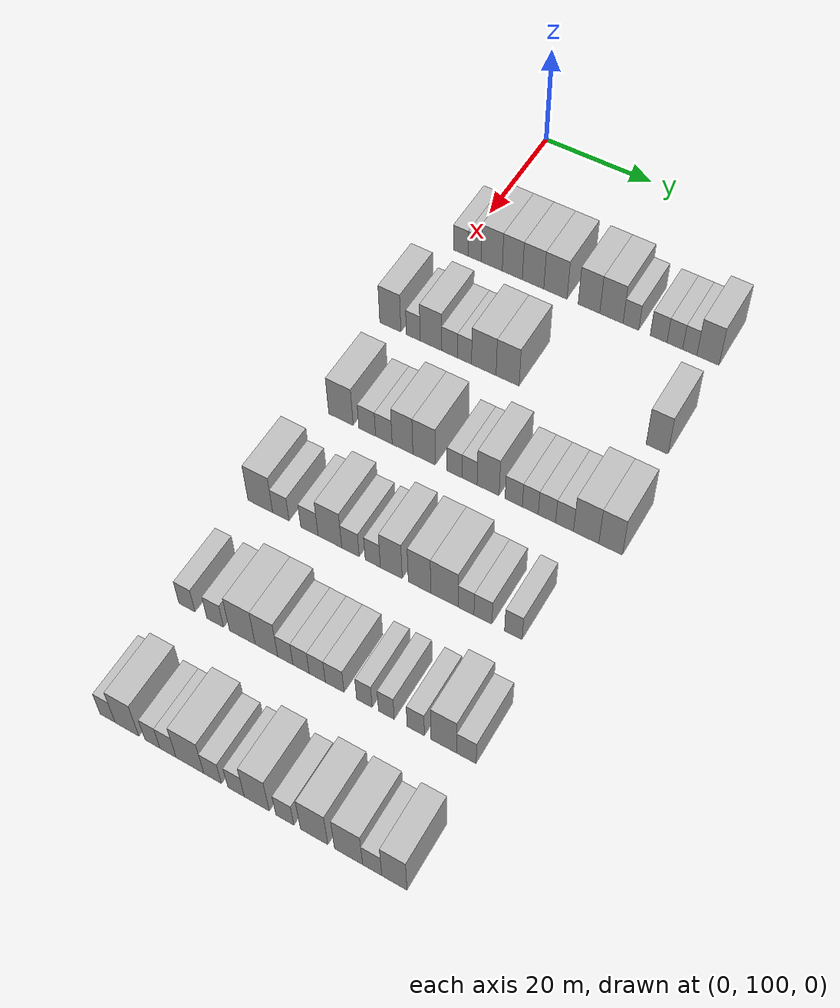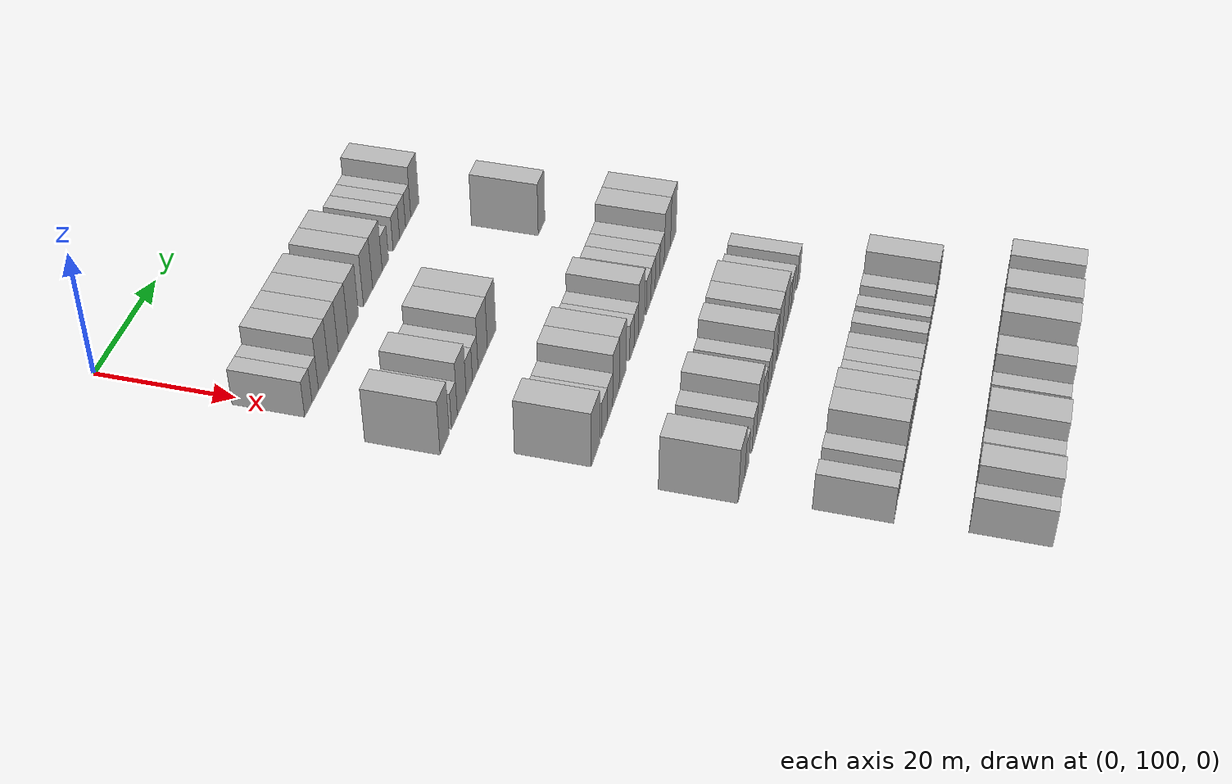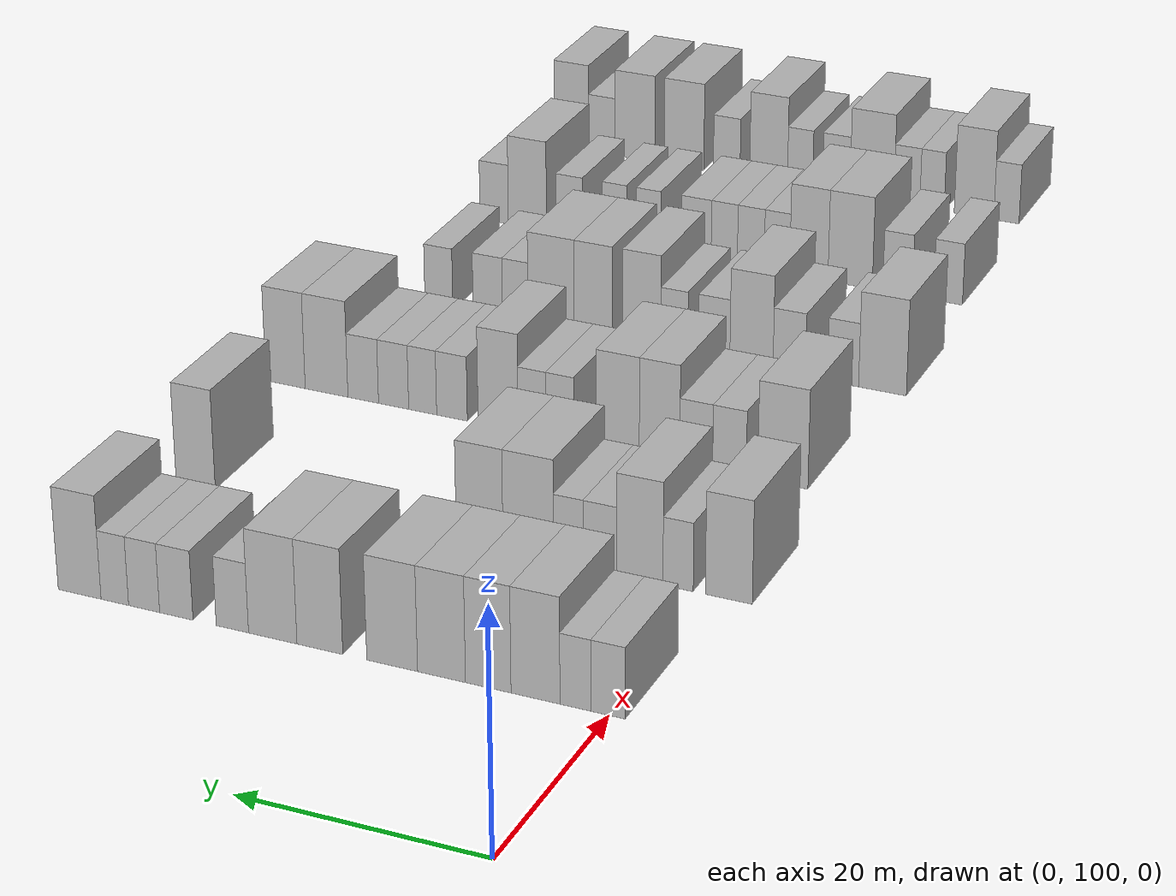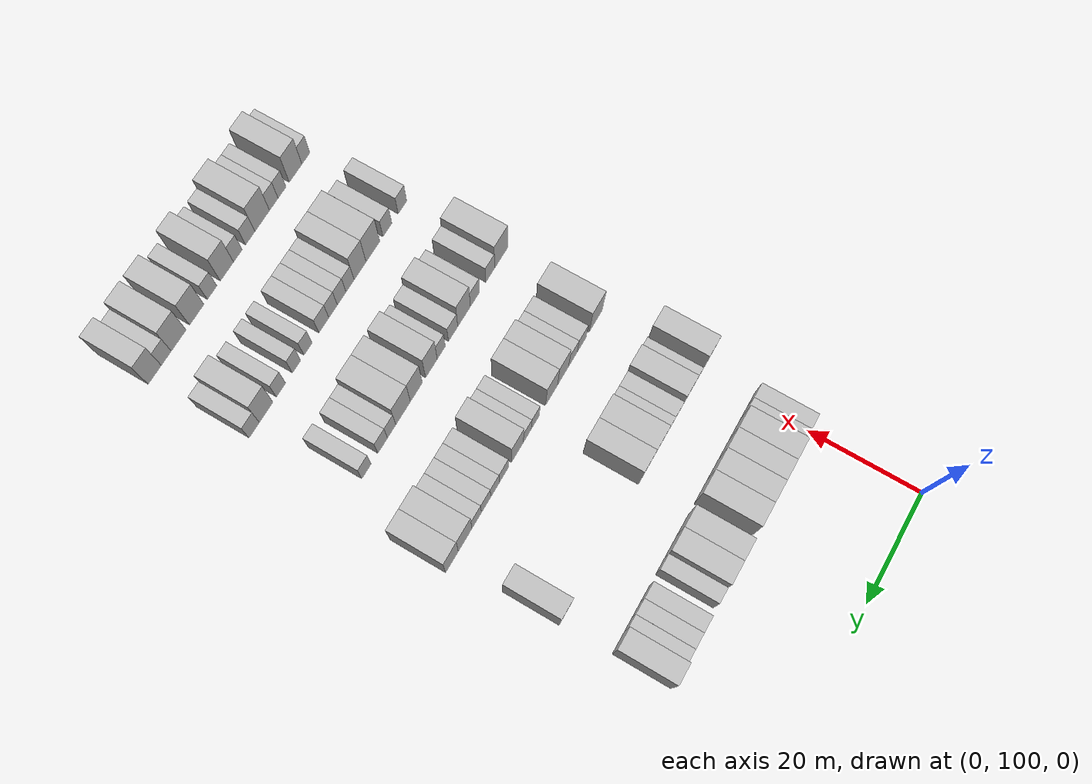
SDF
<sdf version="1.6">
 <world name="default">
  <model name="building_105">
   <static>1</static>
   <pose>25.0000 100.1032 0 0.000000 0.000000 0.000000</pose>
   <link name="link">
    <pose>0 0 3.00 0 0 0</pose>
    <collision name="collision"><geometry><box><size>10.0000 2.7292 6.0000</size></box></geometry></collision>
    <visual name="visual">
     <cast_shadows>0</cast_shadows>
     <geometry><box><size>10.0000 2.7292 6.0000</size></box></geometry>
     <material>
      <script>
       <uri>model://HANNAS_wall/materials/scripts</uri>
       <uri>model://HANNAS_wall/materials/textures</uri>
       <name>vrc/HANNAS_wall</name>
      </script>
     </material>
    </visual>
   </link>
  </model>
  <model name="building_106">
   <static>1</static>
   <pose>25.0000 102.6939 0 0.000000 0.000000 0.000000</pose>
   <link name="link">
    <pose>0 0 3.00 0 0 0</pose>
    <collision name="collision"><geometry><box><size>10.0000 2.4521 6.0000</size></box></geometry></collision>
    <visual name="visual">
     <cast_shadows>0</cast_shadows>
     <geometry><box><size>10.0000 2.4521 6.0000</size></box></geometry>
     <material>
      <script>
       <uri>model://HANNAS_wall/materials/scripts</uri>
       <uri>model://HANNAS_wall/materials/textures</uri>
       <name>vrc/HANNAS_wall</name>
      </script>
     </material>
    </visual>
   </link>
  </model>
  <model name="building_107">
   <static>1</static>
   <pose>25.0000 105.8822 0 0.000000 0.000000 0.000000</pose>
   <link name="link">
    <pose>0 0 4.50 0 0 0</pose>
    <collision name="collision"><geometry><box><size>10.0000 3.9244 9.0000</size></box></geometry></collision>
    <visual name="visual">
     <cast_shadows>0</cast_shadows>
     <geometry><box><size>10.0000 3.9244 9.0000</size></box></geometry>
     <material>
      <script>
       <uri>model://HANNAS_wall/materials/scripts</uri>
       <uri>model://HANNAS_wall/materials/textures</uri>
       <name>vrc/HANNAS_wall</name>
      </script>
     </material>
    </visual>
   </link>
  </model>
  <model name="building_108">
   <static>1</static>
   <pose>25.0000 109.6859 0 0.000000 0.000000 0.000000</pose>
   <link name="link">
    <pose>0 0 4.50 0 0 0</pose>
    <collision name="collision"><geometry><box><size>10.0000 3.6832 9.0000</size></box></geometry></collision>
    <visual name="visual">
     <cast_shadows>0</cast_shadows>
     <geometry><box><size>10.0000 3.6832 9.0000</size></box></geometry>
     <material>
      <script>
       <uri>model://HANNAS_wall/materials/scripts</uri>
       <uri>model://HANNAS_wall/materials/textures</uri>
       <name>vrc/HANNAS_wall</name>
      </script>
     </material>
    </visual>
   </link>
  </model>
  <model name="building_109">
   <static>1</static>
   <pose>25.0000 113.4873 0 0.000000 0.000000 0.000000</pose>
   <link name="link">
    <pose>0 0 4.50 0 0 0</pose>
    <collision name="collision"><geometry><box><size>10.0000 3.9196 9.0000</size></box></geometry></collision>
    <visual name="visual">
     <cast_shadows>0</cast_shadows>
     <geometry><box><size>10.0000 3.9196 9.0000</size></box></geometry>
     <material>
      <script>
       <uri>model://HANNAS_wall/materials/scripts</uri>
       <uri>model://HANNAS_wall/materials/textures</uri>
       <name>vrc/HANNAS_wall</name>
      </script>
     </material>
    </visual>
   </link>
  </model>
  <model name="building_110">
   <static>1</static>
   <pose>25.0000 117.5504 0 0.000000 0.000000 0.000000</pose>
   <link name="link">
    <pose>0 0 4.50 0 0 0</pose>
    <collision name="collision"><geometry><box><size>10.0000 4.2066 9.0000</size></box></geometry></collision>
    <visual name="visual">
     <cast_shadows>0</cast_shadows>
     <geometry><box><size>10.0000 4.2066 9.0000</size></box></geometry>
     <material>
      <script>
       <uri>model://HANNAS_wall/materials/scripts</uri>
       <uri>model://HANNAS_wall/materials/textures</uri>
       <name>vrc/HANNAS_wall</name>
      </script>
     </material>
    </visual>
   </link>
  </model>
  <model name="building_111">
   <static>1</static>
   <pose>25.0000 123.5781 0 0.000000 0.000000 0.000000</pose>
   <link name="link">
    <pose>0 0 4.50 0 0 0</pose>
    <collision name="collision"><geometry><box><size>10.0000 3.8487 9.0000</size></box></geometry></collision>
    <visual name="visual">
     <cast_shadows>0</cast_shadows>
     <geometry><box><size>10.0000 3.8487 9.0000</size></box></geometry>
     <material>
      <script>
       <uri>model://HANNAS_wall/materials/scripts</uri>
       <uri>model://HANNAS_wall/materials/textures</uri>
       <name>vrc/HANNAS_wall</name>
      </script>
     </material>
    </visual>
   </link>
  </model>
  <model name="building_112">
   <static>1</static>
   <pose>25.0000 127.5586 0 0.000000 0.000000 0.000000</pose>
   <link name="link">
    <pose>0 0 4.50 0 0 0</pose>
    <collision name="collision"><geometry><box><size>10.0000 4.1124 9.0000</size></box></geometry></collision>
    <visual name="visual">
     <cast_shadows>0</cast_shadows>
     <geometry><box><size>10.0000 4.1124 9.0000</size></box></geometry>
     <material>
      <script>
       <uri>model://HANNAS_wall/materials/scripts</uri>
       <uri>model://HANNAS_wall/materials/textures</uri>
       <name>vrc/HANNAS_wall</name>
      </script>
     </material>
    </visual>
   </link>
  </model>
  <model name="building_113">
   <static>1</static>
   <pose>25.0000 130.9988 0 0.000000 0.000000 0.000000</pose>
   <link name="link">
    <pose>0 0 3.00 0 0 0</pose>
    <collision name="collision"><geometry><box><size>10.0000 2.7678 6.0000</size></box></geometry></collision>
    <visual name="visual">
     <cast_shadows>0</cast_shadows>
     <geometry><box><size>10.0000 2.7678 6.0000</size></box></geometry>
     <material>
      <script>
       <uri>model://HANNAS_wall/materials/scripts</uri>
       <uri>model://HANNAS_wall/materials/textures</uri>
       <name>vrc/HANNAS_wall</name>
      </script>
     </material>
    </visual>
   </link>
  </model>
  <model name="building_114">
   <static>1</static>
   <pose>25.0000 135.8290 0 0.000000 0.000000 0.000000</pose>
   <link name="link">
    <pose>0 0 3.00 0 0 0</pose>
    <collision name="collision"><geometry><box><size>10.0000 2.8925 6.0000</size></box></geometry></collision>
    <visual name="visual">
     <cast_shadows>0</cast_shadows>
     <geometry><box><size>10.0000 2.8925 6.0000</size></box></geometry>
     <material>
      <script>
       <uri>model://HANNAS_wall/materials/scripts</uri>
       <uri>model://HANNAS_wall/materials/textures</uri>
       <name>vrc/HANNAS_wall</name>
      </script>
     </material>
    </visual>
   </link>
  </model>
  <model name="building_115">
   <static>1</static>
   <pose>25.0000 138.6304 0 0.000000 0.000000 0.000000</pose>
   <link name="link">
    <pose>0 0 3.00 0 0 0</pose>
    <collision name="collision"><geometry><box><size>10.0000 2.7104 6.0000</size></box></geometry></collision>
    <visual name="visual">
     <cast_shadows>0</cast_shadows>
     <geometry><box><size>10.0000 2.7104 6.0000</size></box></geometry>
     <material>
      <script>
       <uri>model://HANNAS_wall/materials/scripts</uri>
       <uri>model://HANNAS_wall/materials/textures</uri>
       <name>vrc/HANNAS_wall</name>
      </script>
     </material>
    </visual>
   </link>
  </model>
  <model name="building_116">
   <static>1</static>
   <pose>25.0000 141.1962 0 0.000000 0.000000 0.000000</pose>
   <link name="link">
    <pose>0 0 3.00 0 0 0</pose>
    <collision name="collision"><geometry><box><size>10.0000 2.4211 6.0000</size></box></geometry></collision>
    <visual name="visual">
     <cast_shadows>0</cast_shadows>
     <geometry><box><size>10.0000 2.4211 6.0000</size></box></geometry>
     <material>
      <script>
       <uri>model://HANNAS_wall/materials/scripts</uri>
       <uri>model://HANNAS_wall/materials/textures</uri>
       <name>vrc/HANNAS_wall</name>
      </script>
     </material>
    </visual>
   </link>
  </model>
  <model name="building_117">
   <static>1</static>
   <pose>25.0000 144.3011 0 0.000000 0.000000 0.000000</pose>
   <link name="link">
    <pose>0 0 4.50 0 0 0</pose>
    <collision name="collision"><geometry><box><size>10.0000 3.7888 9.0000</size></box></geometry></collision>
    <visual name="visual">
     <cast_shadows>0</cast_shadows>
     <geometry><box><size>10.0000 3.7888 9.0000</size></box></geometry>
     <material>
      <script>
       <uri>model://HANNAS_wall/materials/scripts</uri>
       <uri>model://HANNAS_wall/materials/textures</uri>
       <name>vrc/HANNAS_wall</name>
      </script>
     </material>
    </visual>
   </link>
  </model>
  <model name="building_277">
   <static>1</static>
   <pose>44.0000 98.2255 0 0.000000 0.000000 0.000000</pose>
   <link name="link">
    <pose>0 0 4.50 0 0 0</pose>
    <collision name="collision"><geometry><box><size>10.0000 3.8761 9.0000</size></box></geometry></collision>
    <visual name="visual">
     <cast_shadows>0</cast_shadows>
     <geometry><box><size>10.0000 3.8761 9.0000</size></box></geometry>
     <material>
      <script>
       <uri>model://HANNAS_wall/materials/scripts</uri>
       <uri>model://HANNAS_wall/materials/textures</uri>
       <name>vrc/HANNAS_wall</name>
      </script>
     </material>
    </visual>
   </link>
  </model>
  <model name="building_278">
   <static>1</static>
   <pose>44.0000 102.4237 0 0.000000 0.000000 0.000000</pose>
   <link name="link">
    <pose>0 0 3.00 0 0 0</pose>
    <collision name="collision"><geometry><box><size>10.0000 2.5203 6.0000</size></box></geometry></collision>
    <visual name="visual">
     <cast_shadows>0</cast_shadows>
     <geometry><box><size>10.0000 2.5203 6.0000</size></box></geometry>
     <material>
      <script>
       <uri>model://HANNAS_wall/materials/scripts</uri>
       <uri>model://HANNAS_wall/materials/textures</uri>
       <name>vrc/HANNAS_wall</name>
      </script>
     </material>
    </visual>
   </link>
  </model>
  <model name="building_279">
   <static>1</static>
   <pose>44.0000 105.6417 0 0.000000 0.000000 0.000000</pose>
   <link name="link">
    <pose>0 0 4.50 0 0 0</pose>
    <collision name="collision"><geometry><box><size>10.0000 3.9156 9.0000</size></box></geometry></collision>
    <visual name="visual">
     <cast_shadows>0</cast_shadows>
     <geometry><box><size>10.0000 3.9156 9.0000</size></box></geometry>
     <material>
      <script>
       <uri>model://HANNAS_wall/materials/scripts</uri>
       <uri>model://HANNAS_wall/materials/textures</uri>
       <name>vrc/HANNAS_wall</name>
      </script>
     </material>
    </visual>
   </link>
  </model>
  <model name="building_280">
   <static>1</static>
   <pose>44.0000 109.0027 0 0.000000 0.000000 0.000000</pose>
   <link name="link">
    <pose>0 0 3.00 0 0 0</pose>
    <collision name="collision"><geometry><box><size>10.0000 2.8064 6.0000</size></box></geometry></collision>
    <visual name="visual">
     <cast_shadows>0</cast_shadows>
     <geometry><box><size>10.0000 2.8064 6.0000</size></box></geometry>
     <material>
      <script>
       <uri>model://HANNAS_wall/materials/scripts</uri>
       <uri>model://HANNAS_wall/materials/textures</uri>
       <name>vrc/HANNAS_wall</name>
      </script>
     </material>
    </visual>
   </link>
  </model>
  <model name="building_281">
   <static>1</static>
   <pose>44.0000 111.6604 0 0.000000 0.000000 0.000000</pose>
   <link name="link">
    <pose>0 0 3.00 0 0 0</pose>
    <collision name="collision"><geometry><box><size>10.0000 2.5089 6.0000</size></box></geometry></collision>
    <visual name="visual">
     <cast_shadows>0</cast_shadows>
     <geometry><box><size>10.0000 2.5089 6.0000</size></box></geometry>
     <material>
      <script>
       <uri>model://HANNAS_wall/materials/scripts</uri>
       <uri>model://HANNAS_wall/materials/textures</uri>
       <name>vrc/HANNAS_wall</name>
      </script>
     </material>
    </visual>
   </link>
  </model>
  <model name="building_282">
   <static>1</static>
   <pose>44.0000 115.0886 0 0.000000 0.000000 0.000000</pose>
   <link name="link">
    <pose>0 0 4.50 0 0 0</pose>
    <collision name="collision"><geometry><box><size>10.0000 4.3476 9.0000</size></box></geometry></collision>
    <visual name="visual">
     <cast_shadows>0</cast_shadows>
     <geometry><box><size>10.0000 4.3476 9.0000</size></box></geometry>
     <material>
      <script>
       <uri>model://HANNAS_wall/materials/scripts</uri>
       <uri>model://HANNAS_wall/materials/textures</uri>
       <name>vrc/HANNAS_wall</name>
      </script>
     </material>
    </visual>
   </link>
  </model>
  <model name="building_283">
   <static>1</static>
   <pose>44.0000 119.2868 0 0.000000 0.000000 0.000000</pose>
   <link name="link">
    <pose>0 0 4.50 0 0 0</pose>
    <collision name="collision"><geometry><box><size>10.0000 4.0487 9.0000</size></box></geometry></collision>
    <visual name="visual">
     <cast_shadows>0</cast_shadows>
     <geometry><box><size>10.0000 4.0487 9.0000</size></box></geometry>
     <material>
      <script>
       <uri>model://HANNAS_wall/materials/scripts</uri>
       <uri>model://HANNAS_wall/materials/textures</uri>
       <name>vrc/HANNAS_wall</name>
      </script>
     </material>
    </visual>
   </link>
  </model>
  <model name="building_284">
   <static>1</static>
   <pose>44.0000 144.7348 0 0.000000 0.000000 0.000000</pose>
   <link name="link">
    <pose>0 0 4.50 0 0 0</pose>
    <collision name="collision"><geometry><box><size>10.0000 3.6158 9.0000</size></box></geometry></collision>
    <visual name="visual">
     <cast_shadows>0</cast_shadows>
     <geometry><box><size>10.0000 3.6158 9.0000</size></box></geometry>
     <material>
      <script>
       <uri>model://HANNAS_wall/materials/scripts</uri>
       <uri>model://HANNAS_wall/materials/textures</uri>
       <name>vrc/HANNAS_wall</name>
      </script>
     </material>
    </visual>
   </link>
  </model>
  <model name="building_440">
   <static>1</static>
   <pose>63.0000 101.0371 0 0.000000 0.000000 0.000000</pose>
   <link name="link">
    <pose>0 0 4.50 0 0 0</pose>
    <collision name="collision"><geometry><box><size>10.0000 4.3597 9.0000</size></box></geometry></collision>
    <visual name="visual">
     <cast_shadows>0</cast_shadows>
     <geometry><box><size>10.0000 4.3597 9.0000</size></box></geometry>
     <material>
      <script>
       <uri>model://HANNAS_wall/materials/scripts</uri>
       <uri>model://HANNAS_wall/materials/textures</uri>
       <name>vrc/HANNAS_wall</name>
      </script>
     </material>
    </visual>
   </link>
  </model>
  <model name="building_441">
   <static>1</static>
   <pose>63.0000 105.6928 0 0.000000 0.000000 0.000000</pose>
   <link name="link">
    <pose>0 0 3.00 0 0 0</pose>
    <collision name="collision"><geometry><box><size>10.0000 2.9517 6.0000</size></box></geometry></collision>
    <visual name="visual">
     <cast_shadows>0</cast_shadows>
     <geometry><box><size>10.0000 2.9517 6.0000</size></box></geometry>
     <material>
      <script>
       <uri>model://HANNAS_wall/materials/scripts</uri>
       <uri>model://HANNAS_wall/materials/textures</uri>
       <name>vrc/HANNAS_wall</name>
      </script>
     </material>
    </visual>
   </link>
  </model>
  <model name="building_442">
   <static>1</static>
   <pose>63.0000 108.6210 0 0.000000 0.000000 0.000000</pose>
   <link name="link">
    <pose>0 0 3.00 0 0 0</pose>
    <collision name="collision"><geometry><box><size>10.0000 2.9048 6.0000</size></box></geometry></collision>
    <visual name="visual">
     <cast_shadows>0</cast_shadows>
     <geometry><box><size>10.0000 2.9048 6.0000</size></box></geometry>
     <material>
      <script>
       <uri>model://HANNAS_wall/materials/scripts</uri>
       <uri>model://HANNAS_wall/materials/textures</uri>
       <name>vrc/HANNAS_wall</name>
      </script>
     </material>
    </visual>
   </link>
  </model>
  <model name="building_443">
   <static>1</static>
   <pose>63.0000 111.8776 0 0.000000 0.000000 0.000000</pose>
   <link name="link">
    <pose>0 0 4.50 0 0 0</pose>
    <collision name="collision"><geometry><box><size>10.0000 3.6084 9.0000</size></box></geometry></collision>
    <visual name="visual">
     <cast_shadows>0</cast_shadows>
     <geometry><box><size>10.0000 3.6084 9.0000</size></box></geometry>
     <material>
      <script>
       <uri>model://HANNAS_wall/materials/scripts</uri>
       <uri>model://HANNAS_wall/materials/textures</uri>
       <name>vrc/HANNAS_wall</name>
      </script>
     </material>
    </visual>
   </link>
  </model>
  <model name="building_444">
   <static>1</static>
   <pose>63.0000 115.6201 0 0.000000 0.000000 0.000000</pose>
   <link name="link">
    <pose>0 0 4.50 0 0 0</pose>
    <collision name="collision"><geometry><box><size>10.0000 3.8767 9.0000</size></box></geometry></collision>
    <visual name="visual">
     <cast_shadows>0</cast_shadows>
     <geometry><box><size>10.0000 3.8767 9.0000</size></box></geometry>
     <material>
      <script>
       <uri>model://HANNAS_wall/materials/scripts</uri>
       <uri>model://HANNAS_wall/materials/textures</uri>
       <name>vrc/HANNAS_wall</name>
      </script>
     </material>
    </visual>
   </link>
  </model>
  <model name="building_445">
   <static>1</static>
   <pose>63.0000 120.8266 0 0.000000 0.000000 0.000000</pose>
   <link name="link">
    <pose>0 0 3.00 0 0 0</pose>
    <collision name="collision"><geometry><box><size>10.0000 2.5363 6.0000</size></box></geometry></collision>
    <visual name="visual">
     <cast_shadows>0</cast_shadows>
     <geometry><box><size>10.0000 2.5363 6.0000</size></box></geometry>
     <material>
      <script>
       <uri>model://HANNAS_wall/materials/scripts</uri>
       <uri>model://HANNAS_wall/materials/textures</uri>
       <name>vrc/HANNAS_wall</name>
      </script>
     </material>
    </visual>
   </link>
  </model>
  <model name="building_446">
   <static>1</static>
   <pose>63.0000 123.3679 0 0.000000 0.000000 0.000000</pose>
   <link name="link">
    <pose>0 0 3.00 0 0 0</pose>
    <collision name="collision"><geometry><box><size>10.0000 2.5462 6.0000</size></box></geometry></collision>
    <visual name="visual">
     <cast_shadows>0</cast_shadows>
     <geometry><box><size>10.0000 2.5462 6.0000</size></box></geometry>
     <material>
      <script>
       <uri>model://HANNAS_wall/materials/scripts</uri>
       <uri>model://HANNAS_wall/materials/textures</uri>
       <name>vrc/HANNAS_wall</name>
      </script>
     </material>
    </visual>
   </link>
  </model>
  <model name="building_447">
   <static>1</static>
   <pose>63.0000 126.4881 0 0.000000 0.000000 0.000000</pose>
   <link name="link">
    <pose>0 0 4.50 0 0 0</pose>
    <collision name="collision"><geometry><box><size>10.0000 3.6941 9.0000</size></box></geometry></collision>
    <visual name="visual">
     <cast_shadows>0</cast_shadows>
     <geometry><box><size>10.0000 3.6941 9.0000</size></box></geometry>
     <material>
      <script>
       <uri>model://HANNAS_wall/materials/scripts</uri>
       <uri>model://HANNAS_wall/materials/textures</uri>
       <name>vrc/HANNAS_wall</name>
      </script>
     </material>
    </visual>
   </link>
  </model>
  <model name="building_448">
   <static>1</static>
   <pose>63.0000 130.7661 0 0.000000 0.000000 0.000000</pose>
   <link name="link">
    <pose>0 0 3.00 0 0 0</pose>
    <collision name="collision"><geometry><box><size>10.0000 2.8619 6.0000</size></box></geometry></collision>
    <visual name="visual">
     <cast_shadows>0</cast_shadows>
     <geometry><box><size>10.0000 2.8619 6.0000</size></box></geometry>
     <material>
      <script>
       <uri>model://HANNAS_wall/materials/scripts</uri>
       <uri>model://HANNAS_wall/materials/textures</uri>
       <name>vrc/HANNAS_wall</name>
      </script>
     </material>
    </visual>
   </link>
  </model>
  <model name="building_449">
   <static>1</static>
   <pose>63.0000 133.5086 0 0.000000 0.000000 0.000000</pose>
   <link name="link">
    <pose>0 0 3.00 0 0 0</pose>
    <collision name="collision"><geometry><box><size>10.0000 2.6233 6.0000</size></box></geometry></collision>
    <visual name="visual">
     <cast_shadows>0</cast_shadows>
     <geometry><box><size>10.0000 2.6233 6.0000</size></box></geometry>
     <material>
      <script>
       <uri>model://HANNAS_wall/materials/scripts</uri>
       <uri>model://HANNAS_wall/materials/textures</uri>
       <name>vrc/HANNAS_wall</name>
      </script>
     </material>
    </visual>
   </link>
  </model>
  <model name="building_450">
   <static>1</static>
   <pose>63.0000 136.2419 0 0.000000 0.000000 0.000000</pose>
   <link name="link">
    <pose>0 0 3.00 0 0 0</pose>
    <collision name="collision"><geometry><box><size>10.0000 2.8433 6.0000</size></box></geometry></collision>
    <visual name="visual">
     <cast_shadows>0</cast_shadows>
     <geometry><box><size>10.0000 2.8433 6.0000</size></box></geometry>
     <material>
      <script>
       <uri>model://HANNAS_wall/materials/scripts</uri>
       <uri>model://HANNAS_wall/materials/textures</uri>
       <name>vrc/HANNAS_wall</name>
      </script>
     </material>
    </visual>
   </link>
  </model>
  <model name="building_451">
   <static>1</static>
   <pose>63.0000 139.1168 0 0.000000 0.000000 0.000000</pose>
   <link name="link">
    <pose>0 0 3.00 0 0 0</pose>
    <collision name="collision"><geometry><box><size>10.0000 2.9066 6.0000</size></box></geometry></collision>
    <visual name="visual">
     <cast_shadows>0</cast_shadows>
     <geometry><box><size>10.0000 2.9066 6.0000</size></box></geometry>
     <material>
      <script>
       <uri>model://HANNAS_wall/materials/scripts</uri>
       <uri>model://HANNAS_wall/materials/textures</uri>
       <name>vrc/HANNAS_wall</name>
      </script>
     </material>
    </visual>
   </link>
  </model>
  <model name="building_452">
   <static>1</static>
   <pose>63.0000 142.6146 0 0.000000 0.000000 0.000000</pose>
   <link name="link">
    <pose>0 0 4.50 0 0 0</pose>
    <collision name="collision"><geometry><box><size>10.0000 4.0890 9.0000</size></box></geometry></collision>
    <visual name="visual">
     <cast_shadows>0</cast_shadows>
     <geometry><box><size>10.0000 4.0890 9.0000</size></box></geometry>
     <material>
      <script>
       <uri>model://HANNAS_wall/materials/scripts</uri>
       <uri>model://HANNAS_wall/materials/textures</uri>
       <name>vrc/HANNAS_wall</name>
      </script>
     </material>
    </visual>
   </link>
  </model>
  <model name="building_453">
   <static>1</static>
   <pose>63.0000 146.5512 0 0.000000 0.000000 0.000000</pose>
   <link name="link">
    <pose>0 0 4.50 0 0 0</pose>
    <collision name="collision"><geometry><box><size>10.0000 3.7841 9.0000</size></box></geometry></collision>
    <visual name="visual">
     <cast_shadows>0</cast_shadows>
     <geometry><box><size>10.0000 3.7841 9.0000</size></box></geometry>
     <material>
      <script>
       <uri>model://HANNAS_wall/materials/scripts</uri>
       <uri>model://HANNAS_wall/materials/textures</uri>
       <name>vrc/HANNAS_wall</name>
      </script>
     </material>
    </visual>
   </link>
  </model>
  <model name="building_619">
   <static>1</static>
   <pose>82.0000 99.1769 0 0.000000 0.000000 0.000000</pose>
   <link name="link">
    <pose>0 0 4.50 0 0 0</pose>
    <collision name="collision"><geometry><box><size>10.0000 4.3205 9.0000</size></box></geometry></collision>
    <visual name="visual">
     <cast_shadows>0</cast_shadows>
     <geometry><box><size>10.0000 4.3205 9.0000</size></box></geometry>
     <material>
      <script>
       <uri>model://HANNAS_wall/materials/scripts</uri>
       <uri>model://HANNAS_wall/materials/textures</uri>
       <name>vrc/HANNAS_wall</name>
      </script>
     </material>
    </visual>
   </link>
  </model>
  <model name="building_620">
   <static>1</static>
   <pose>82.0000 102.7558 0 0.000000 0.000000 0.000000</pose>
   <link name="link">
    <pose>0 0 3.00 0 0 0</pose>
    <collision name="collision"><geometry><box><size>10.0000 2.8372 6.0000</size></box></geometry></collision>
    <visual name="visual">
     <cast_shadows>0</cast_shadows>
     <geometry><box><size>10.0000 2.8372 6.0000</size></box></geometry>
     <material>
      <script>
       <uri>model://HANNAS_wall/materials/scripts</uri>
       <uri>model://HANNAS_wall/materials/textures</uri>
       <name>vrc/HANNAS_wall</name>
      </script>
     </material>
    </visual>
   </link>
  </model>
  <model name="building_621">
   <static>1</static>
   <pose>82.0000 107.6707 0 0.000000 0.000000 0.000000</pose>
   <link name="link">
    <pose>0 0 3.00 0 0 0</pose>
    <collision name="collision"><geometry><box><size>10.0000 2.9926 6.0000</size></box></geometry></collision>
    <visual name="visual">
     <cast_shadows>0</cast_shadows>
     <geometry><box><size>10.0000 2.9926 6.0000</size></box></geometry>
     <material>
      <script>
       <uri>model://HANNAS_wall/materials/scripts</uri>
       <uri>model://HANNAS_wall/materials/textures</uri>
       <name>vrc/HANNAS_wall</name>
      </script>
     </material>
    </visual>
   </link>
  </model>
  <model name="building_622">
   <static>1</static>
   <pose>82.0000 111.1704 0 0.000000 0.000000 0.000000</pose>
   <link name="link">
    <pose>0 0 4.50 0 0 0</pose>
    <collision name="collision"><geometry><box><size>10.0000 4.0069 9.0000</size></box></geometry></collision>
    <visual name="visual">
     <cast_shadows>0</cast_shadows>
     <geometry><box><size>10.0000 4.0069 9.0000</size></box></geometry>
     <material>
      <script>
       <uri>model://HANNAS_wall/materials/scripts</uri>
       <uri>model://HANNAS_wall/materials/textures</uri>
       <name>vrc/HANNAS_wall</name>
      </script>
     </material>
    </visual>
   </link>
  </model>
  <model name="building_623">
   <static>1</static>
   <pose>82.0000 114.6451 0 0.000000 0.000000 0.000000</pose>
   <link name="link">
    <pose>0 0 3.00 0 0 0</pose>
    <collision name="collision"><geometry><box><size>10.0000 2.9426 6.0000</size></box></geometry></collision>
    <visual name="visual">
     <cast_shadows>0</cast_shadows>
     <geometry><box><size>10.0000 2.9426 6.0000</size></box></geometry>
     <material>
      <script>
       <uri>model://HANNAS_wall/materials/scripts</uri>
       <uri>model://HANNAS_wall/materials/textures</uri>
       <name>vrc/HANNAS_wall</name>
      </script>
     </material>
    </visual>
   </link>
  </model>
  <model name="building_624">
   <static>1</static>
   <pose>82.0000 118.3782 0 0.000000 0.000000 0.000000</pose>
   <link name="link">
    <pose>0 0 3.00 0 0 0</pose>
    <collision name="collision"><geometry><box><size>10.0000 2.5235 6.0000</size></box></geometry></collision>
    <visual name="visual">
     <cast_shadows>0</cast_shadows>
     <geometry><box><size>10.0000 2.5235 6.0000</size></box></geometry>
     <material>
      <script>
       <uri>model://HANNAS_wall/materials/scripts</uri>
       <uri>model://HANNAS_wall/materials/textures</uri>
       <name>vrc/HANNAS_wall</name>
      </script>
     </material>
    </visual>
   </link>
  </model>
  <model name="building_625">
   <static>1</static>
   <pose>82.0000 121.4473 0 0.000000 0.000000 0.000000</pose>
   <link name="link">
    <pose>0 0 4.50 0 0 0</pose>
    <collision name="collision"><geometry><box><size>10.0000 3.6148 9.0000</size></box></geometry></collision>
    <visual name="visual">
     <cast_shadows>0</cast_shadows>
     <geometry><box><size>10.0000 3.6148 9.0000</size></box></geometry>
     <material>
      <script>
       <uri>model://HANNAS_wall/materials/scripts</uri>
       <uri>model://HANNAS_wall/materials/textures</uri>
       <name>vrc/HANNAS_wall</name>
      </script>
     </material>
    </visual>
   </link>
  </model>
  <model name="building_626">
   <static>1</static>
   <pose>82.0000 126.0879 0 0.000000 0.000000 0.000000</pose>
   <link name="link">
    <pose>0 0 4.50 0 0 0</pose>
    <collision name="collision"><geometry><box><size>10.0000 3.6664 9.0000</size></box></geometry></collision>
    <visual name="visual">
     <cast_shadows>0</cast_shadows>
     <geometry><box><size>10.0000 3.6664 9.0000</size></box></geometry>
     <material>
      <script>
       <uri>model://HANNAS_wall/materials/scripts</uri>
       <uri>model://HANNAS_wall/materials/textures</uri>
       <name>vrc/HANNAS_wall</name>
      </script>
     </material>
    </visual>
   </link>
  </model>
  <model name="building_627">
   <static>1</static>
   <pose>82.0000 130.1460 0 0.000000 0.000000 0.000000</pose>
   <link name="link">
    <pose>0 0 4.50 0 0 0</pose>
    <collision name="collision"><geometry><box><size>10.0000 4.4497 9.0000</size></box></geometry></collision>
    <visual name="visual">
     <cast_shadows>0</cast_shadows>
     <geometry><box><size>10.0000 4.4497 9.0000</size></box></geometry>
     <material>
      <script>
       <uri>model://HANNAS_wall/materials/scripts</uri>
       <uri>model://HANNAS_wall/materials/textures</uri>
       <name>vrc/HANNAS_wall</name>
      </script>
     </material>
    </visual>
   </link>
  </model>
  <model name="building_628">
   <static>1</static>
   <pose>82.0000 133.6245 0 0.000000 0.000000 0.000000</pose>
   <link name="link">
    <pose>0 0 3.00 0 0 0</pose>
    <collision name="collision"><geometry><box><size>10.0000 2.5075 6.0000</size></box></geometry></collision>
    <visual name="visual">
     <cast_shadows>0</cast_shadows>
     <geometry><box><size>10.0000 2.5075 6.0000</size></box></geometry>
     <material>
      <script>
       <uri>model://HANNAS_wall/materials/scripts</uri>
       <uri>model://HANNAS_wall/materials/textures</uri>
       <name>vrc/HANNAS_wall</name>
      </script>
     </material>
    </visual>
   </link>
  </model>
  <model name="building_629">
   <static>1</static>
   <pose>82.0000 136.3115 0 0.000000 0.000000 0.000000</pose>
   <link name="link">
    <pose>0 0 3.00 0 0 0</pose>
    <collision name="collision"><geometry><box><size>10.0000 2.8664 6.0000</size></box></geometry></collision>
    <visual name="visual">
     <cast_shadows>0</cast_shadows>
     <geometry><box><size>10.0000 2.8664 6.0000</size></box></geometry>
     <material>
      <script>
       <uri>model://HANNAS_wall/materials/scripts</uri>
       <uri>model://HANNAS_wall/materials/textures</uri>
       <name>vrc/HANNAS_wall</name>
      </script>
     </material>
    </visual>
   </link>
  </model>
  <model name="building_630">
   <static>1</static>
   <pose>82.0000 141.1263 0 0.000000 0.000000 0.000000</pose>
   <link name="link">
    <pose>0 0 3.00 0 0 0</pose>
    <collision name="collision"><geometry><box><size>10.0000 2.7633 6.0000</size></box></geometry></collision>
    <visual name="visual">
     <cast_shadows>0</cast_shadows>
     <geometry><box><size>10.0000 2.7633 6.0000</size></box></geometry>
     <material>
      <script>
       <uri>model://HANNAS_wall/materials/scripts</uri>
       <uri>model://HANNAS_wall/materials/textures</uri>
       <name>vrc/HANNAS_wall</name>
      </script>
     </material>
    </visual>
   </link>
  </model>
  <model name="building_791">
   <static>1</static>
   <pose>101.0000 99.6569 0 0.000000 0.000000 0.000000</pose>
   <link name="link">
    <pose>0 0 3.00 0 0 0</pose>
    <collision name="collision"><geometry><box><size>10.0000 2.7370 6.0000</size></box></geometry></collision>
    <visual name="visual">
     <cast_shadows>0</cast_shadows>
     <geometry><box><size>10.0000 2.7370 6.0000</size></box></geometry>
     <material>
      <script>
       <uri>model://HANNAS_wall/materials/scripts</uri>
       <uri>model://HANNAS_wall/materials/textures</uri>
       <name>vrc/HANNAS_wall</name>
      </script>
     </material>
    </visual>
   </link>
  </model>
  <model name="building_792">
   <static>1</static>
   <pose>101.0000 104.4366 0 0.000000 0.000000 0.000000</pose>
   <link name="link">
    <pose>0 0 3.00 0 0 0</pose>
    <collision name="collision"><geometry><box><size>10.0000 2.8224 6.0000</size></box></geometry></collision>
    <visual name="visual">
     <cast_shadows>0</cast_shadows>
     <geometry><box><size>10.0000 2.8224 6.0000</size></box></geometry>
     <material>
      <script>
       <uri>model://HANNAS_wall/materials/scripts</uri>
       <uri>model://HANNAS_wall/materials/textures</uri>
       <name>vrc/HANNAS_wall</name>
      </script>
     </material>
    </visual>
   </link>
  </model>
  <model name="building_793">
   <static>1</static>
   <pose>101.0000 108.9797 0 0.000000 0.000000 0.000000</pose>
   <link name="link">
    <pose>0 0 4.50 0 0 0</pose>
    <collision name="collision"><geometry><box><size>10.0000 4.2639 9.0000</size></box></geometry></collision>
    <visual name="visual">
     <cast_shadows>0</cast_shadows>
     <geometry><box><size>10.0000 4.2639 9.0000</size></box></geometry>
     <material>
      <script>
       <uri>model://HANNAS_wall/materials/scripts</uri>
       <uri>model://HANNAS_wall/materials/textures</uri>
       <name>vrc/HANNAS_wall</name>
      </script>
     </material>
    </visual>
   </link>
  </model>
  <model name="building_794">
   <static>1</static>
   <pose>101.0000 112.9693 0 0.000000 0.000000 0.000000</pose>
   <link name="link">
    <pose>0 0 4.50 0 0 0</pose>
    <collision name="collision"><geometry><box><size>10.0000 3.7154 9.0000</size></box></geometry></collision>
    <visual name="visual">
     <cast_shadows>0</cast_shadows>
     <geometry><box><size>10.0000 3.7154 9.0000</size></box></geometry>
     <material>
      <script>
       <uri>model://HANNAS_wall/materials/scripts</uri>
       <uri>model://HANNAS_wall/materials/textures</uri>
       <name>vrc/HANNAS_wall</name>
      </script>
     </material>
    </visual>
   </link>
  </model>
  <model name="building_795">
   <static>1</static>
   <pose>101.0000 116.0706 0 0.000000 0.000000 0.000000</pose>
   <link name="link">
    <pose>0 0 3.00 0 0 0</pose>
    <collision name="collision"><geometry><box><size>10.0000 2.4872 6.0000</size></box></geometry></collision>
    <visual name="visual">
     <cast_shadows>0</cast_shadows>
     <geometry><box><size>10.0000 2.4872 6.0000</size></box></geometry>
     <material>
      <script>
       <uri>model://HANNAS_wall/materials/scripts</uri>
       <uri>model://HANNAS_wall/materials/textures</uri>
       <name>vrc/HANNAS_wall</name>
      </script>
     </material>
    </visual>
   </link>
  </model>
  <model name="building_796">
   <static>1</static>
   <pose>101.0000 118.6329 0 0.000000 0.000000 0.000000</pose>
   <link name="link">
    <pose>0 0 3.00 0 0 0</pose>
    <collision name="collision"><geometry><box><size>10.0000 2.6376 6.0000</size></box></geometry></collision>
    <visual name="visual">
     <cast_shadows>0</cast_shadows>
     <geometry><box><size>10.0000 2.6376 6.0000</size></box></geometry>
     <material>
      <script>
       <uri>model://HANNAS_wall/materials/scripts</uri>
       <uri>model://HANNAS_wall/materials/textures</uri>
       <name>vrc/HANNAS_wall</name>
      </script>
     </material>
    </visual>
   </link>
  </model>
  <model name="building_797">
   <static>1</static>
   <pose>101.0000 121.2473 0 0.000000 0.000000 0.000000</pose>
   <link name="link">
    <pose>0 0 3.00 0 0 0</pose>
    <collision name="collision"><geometry><box><size>10.0000 2.5912 6.0000</size></box></geometry></collision>
    <visual name="visual">
     <cast_shadows>0</cast_shadows>
     <geometry><box><size>10.0000 2.5912 6.0000</size></box></geometry>
     <material>
      <script>
       <uri>model://HANNAS_wall/materials/scripts</uri>
       <uri>model://HANNAS_wall/materials/textures</uri>
       <name>vrc/HANNAS_wall</name>
      </script>
     </material>
    </visual>
   </link>
  </model>
  <model name="building_798">
   <static>1</static>
   <pose>101.0000 124.0406 0 0.000000 0.000000 0.000000</pose>
   <link name="link">
    <pose>0 0 3.00 0 0 0</pose>
    <collision name="collision"><geometry><box><size>10.0000 2.9952 6.0000</size></box></geometry></collision>
    <visual name="visual">
     <cast_shadows>0</cast_shadows>
     <geometry><box><size>10.0000 2.9952 6.0000</size></box></geometry>
     <material>
      <script>
       <uri>model://HANNAS_wall/materials/scripts</uri>
       <uri>model://HANNAS_wall/materials/textures</uri>
       <name>vrc/HANNAS_wall</name>
      </script>
     </material>
    </visual>
   </link>
  </model>
  <model name="building_799">
   <static>1</static>
   <pose>101.0000 128.7592 0 0.000000 0.000000 0.000000</pose>
   <link name="link">
    <pose>0 0 3.00 0 0 0</pose>
    <collision name="collision"><geometry><box><size>10.0000 2.4421 6.0000</size></box></geometry></collision>
    <visual name="visual">
     <cast_shadows>0</cast_shadows>
     <geometry><box><size>10.0000 2.4421 6.0000</size></box></geometry>
     <material>
      <script>
       <uri>model://HANNAS_wall/materials/scripts</uri>
       <uri>model://HANNAS_wall/materials/textures</uri>
       <name>vrc/HANNAS_wall</name>
      </script>
     </material>
    </visual>
   </link>
  </model>
  <model name="building_800">
   <static>1</static>
   <pose>101.0000 132.2073 0 0.000000 0.000000 0.000000</pose>
   <link name="link">
    <pose>0 0 3.00 0 0 0</pose>
    <collision name="collision"><geometry><box><size>10.0000 2.4540 6.0000</size></box></geometry></collision>
    <visual name="visual">
     <cast_shadows>0</cast_shadows>
     <geometry><box><size>10.0000 2.4540 6.0000</size></box></geometry>
     <material>
      <script>
       <uri>model://HANNAS_wall/materials/scripts</uri>
       <uri>model://HANNAS_wall/materials/textures</uri>
       <name>vrc/HANNAS_wall</name>
      </script>
     </material>
    </visual>
   </link>
  </model>
  <model name="building_801">
   <static>1</static>
   <pose>101.0000 136.7727 0 0.000000 0.000000 0.000000</pose>
   <link name="link">
    <pose>0 0 3.00 0 0 0</pose>
    <collision name="collision"><geometry><box><size>10.0000 2.6768 6.0000</size></box></geometry></collision>
    <visual name="visual">
     <cast_shadows>0</cast_shadows>
     <geometry><box><size>10.0000 2.6768 6.0000</size></box></geometry>
     <material>
      <script>
       <uri>model://HANNAS_wall/materials/scripts</uri>
       <uri>model://HANNAS_wall/materials/textures</uri>
       <name>vrc/HANNAS_wall</name>
      </script>
     </material>
    </visual>
   </link>
  </model>
  <model name="building_802">
   <static>1</static>
   <pose>101.0000 141.0744 0 0.000000 0.000000 0.000000</pose>
   <link name="link">
    <pose>0 0 4.50 0 0 0</pose>
    <collision name="collision"><geometry><box><size>10.0000 3.9266 9.0000</size></box></geometry></collision>
    <visual name="visual">
     <cast_shadows>0</cast_shadows>
     <geometry><box><size>10.0000 3.9266 9.0000</size></box></geometry>
     <material>
      <script>
       <uri>model://HANNAS_wall/materials/scripts</uri>
       <uri>model://HANNAS_wall/materials/textures</uri>
       <name>vrc/HANNAS_wall</name>
      </script>
     </material>
    </visual>
   </link>
  </model>
  <model name="building_803">
   <static>1</static>
   <pose>101.0000 144.5076 0 0.000000 0.000000 0.000000</pose>
   <link name="link">
    <pose>0 0 3.00 0 0 0</pose>
    <collision name="collision"><geometry><box><size>10.0000 2.9399 6.0000</size></box></geometry></collision>
    <visual name="visual">
     <cast_shadows>0</cast_shadows>
     <geometry><box><size>10.0000 2.9399 6.0000</size></box></geometry>
     <material>
      <script>
       <uri>model://HANNAS_wall/materials/scripts</uri>
       <uri>model://HANNAS_wall/materials/textures</uri>
       <name>vrc/HANNAS_wall</name>
      </script>
     </material>
    </visual>
   </link>
  </model>
  <model name="building_953">
   <static>1</static>
   <pose>120.0000 100.2451 0 0.000000 0.000000 0.000000</pose>
   <link name="link">
    <pose>0 0 3.00 0 0 0</pose>
    <collision name="collision"><geometry><box><size>10.0000 2.4894 6.0000</size></box></geometry></collision>
    <visual name="visual">
     <cast_shadows>0</cast_shadows>
     <geometry><box><size>10.0000 2.4894 6.0000</size></box></geometry>
     <material>
      <script>
       <uri>model://HANNAS_wall/materials/scripts</uri>
       <uri>model://HANNAS_wall/materials/textures</uri>
       <name>vrc/HANNAS_wall</name>
      </script>
     </material>
    </visual>
   </link>
  </model>
  <model name="building_954">
   <static>1</static>
   <pose>120.0000 103.4435 0 0.000000 0.000000 0.000000</pose>
   <link name="link">
    <pose>0 0 4.50 0 0 0</pose>
    <collision name="collision"><geometry><box><size>10.0000 3.9074 9.0000</size></box></geometry></collision>
    <visual name="visual">
     <cast_shadows>0</cast_shadows>
     <geometry><box><size>10.0000 3.9074 9.0000</size></box></geometry>
     <material>
      <script>
       <uri>model://HANNAS_wall/materials/scripts</uri>
       <uri>model://HANNAS_wall/materials/textures</uri>
       <name>vrc/HANNAS_wall</name>
      </script>
     </material>
    </visual>
   </link>
  </model>
  <model name="building_955">
   <static>1</static>
   <pose>120.0000 107.6163 0 0.000000 0.000000 0.000000</pose>
   <link name="link">
    <pose>0 0 3.00 0 0 0</pose>
    <collision name="collision"><geometry><box><size>10.0000 2.4382 6.0000</size></box></geometry></collision>
    <visual name="visual">
     <cast_shadows>0</cast_shadows>
     <geometry><box><size>10.0000 2.4382 6.0000</size></box></geometry>
     <material>
      <script>
       <uri>model://HANNAS_wall/materials/scripts</uri>
       <uri>model://HANNAS_wall/materials/textures</uri>
       <name>vrc/HANNAS_wall</name>
      </script>
     </material>
    </visual>
   </link>
  </model>
  <model name="building_956">
   <static>1</static>
   <pose>120.0000 110.1420 0 0.000000 0.000000 0.000000</pose>
   <link name="link">
    <pose>0 0 3.00 0 0 0</pose>
    <collision name="collision"><geometry><box><size>10.0000 2.6132 6.0000</size></box></geometry></collision>
    <visual name="visual">
     <cast_shadows>0</cast_shadows>
     <geometry><box><size>10.0000 2.6132 6.0000</size></box></geometry>
     <material>
      <script>
       <uri>model://HANNAS_wall/materials/scripts</uri>
       <uri>model://HANNAS_wall/materials/textures</uri>
       <name>vrc/HANNAS_wall</name>
      </script>
     </material>
    </visual>
   </link>
  </model>
  <model name="building_957">
   <static>1</static>
   <pose>120.0000 113.6655 0 0.000000 0.000000 0.000000</pose>
   <link name="link">
    <pose>0 0 4.50 0 0 0</pose>
    <collision name="collision"><geometry><box><size>10.0000 4.4337 9.0000</size></box></geometry></collision>
    <visual name="visual">
     <cast_shadows>0</cast_shadows>
     <geometry><box><size>10.0000 4.4337 9.0000</size></box></geometry>
     <material>
      <script>
       <uri>model://HANNAS_wall/materials/scripts</uri>
       <uri>model://HANNAS_wall/materials/textures</uri>
       <name>vrc/HANNAS_wall</name>
      </script>
     </material>
    </visual>
   </link>
  </model>
  <model name="building_958">
   <static>1</static>
   <pose>120.0000 117.2790 0 0.000000 0.000000 0.000000</pose>
   <link name="link">
    <pose>0 0 3.00 0 0 0</pose>
    <collision name="collision"><geometry><box><size>10.0000 2.7934 6.0000</size></box></geometry></collision>
    <visual name="visual">
     <cast_shadows>0</cast_shadows>
     <geometry><box><size>10.0000 2.7934 6.0000</size></box></geometry>
     <material>
      <script>
       <uri>model://HANNAS_wall/materials/scripts</uri>
       <uri>model://HANNAS_wall/materials/textures</uri>
       <name>vrc/HANNAS_wall</name>
      </script>
     </material>
    </visual>
   </link>
  </model>
  <model name="building_959">
   <static>1</static>
   <pose>120.0000 120.9679 0 0.000000 0.000000 0.000000</pose>
   <link name="link">
    <pose>0 0 3.00 0 0 0</pose>
    <collision name="collision"><geometry><box><size>10.0000 2.5845 6.0000</size></box></geometry></collision>
    <visual name="visual">
     <cast_shadows>0</cast_shadows>
     <geometry><box><size>10.0000 2.5845 6.0000</size></box></geometry>
     <material>
      <script>
       <uri>model://HANNAS_wall/materials/scripts</uri>
       <uri>model://HANNAS_wall/materials/textures</uri>
       <name>vrc/HANNAS_wall</name>
      </script>
     </material>
    </visual>
   </link>
  </model>
  <model name="building_960">
   <static>1</static>
   <pose>120.0000 124.2039 0 0.000000 0.000000 0.000000</pose>
   <link name="link">
    <pose>0 0 4.50 0 0 0</pose>
    <collision name="collision"><geometry><box><size>10.0000 3.8876 9.0000</size></box></geometry></collision>
    <visual name="visual">
     <cast_shadows>0</cast_shadows>
     <geometry><box><size>10.0000 3.8876 9.0000</size></box></geometry>
     <material>
      <script>
       <uri>model://HANNAS_wall/materials/scripts</uri>
       <uri>model://HANNAS_wall/materials/textures</uri>
       <name>vrc/HANNAS_wall</name>
      </script>
     </material>
    </visual>
   </link>
  </model>
  <model name="building_961">
   <static>1</static>
   <pose>120.0000 128.5340 0 0.000000 0.000000 0.000000</pose>
   <link name="link">
    <pose>0 0 3.00 0 0 0</pose>
    <collision name="collision"><geometry><box><size>10.0000 2.7724 6.0000</size></box></geometry></collision>
    <visual name="visual">
     <cast_shadows>0</cast_shadows>
     <geometry><box><size>10.0000 2.7724 6.0000</size></box></geometry>
     <material>
      <script>
       <uri>model://HANNAS_wall/materials/scripts</uri>
       <uri>model://HANNAS_wall/materials/textures</uri>
       <name>vrc/HANNAS_wall</name>
      </script>
     </material>
    </visual>
   </link>
  </model>
  <model name="building_962">
   <static>1</static>
   <pose>120.0000 132.9970 0 0.000000 0.000000 0.000000</pose>
   <link name="link">
    <pose>0 0 4.50 0 0 0</pose>
    <collision name="collision"><geometry><box><size>10.0000 4.1537 9.0000</size></box></geometry></collision>
    <visual name="visual">
     <cast_shadows>0</cast_shadows>
     <geometry><box><size>10.0000 4.1537 9.0000</size></box></geometry>
     <material>
      <script>
       <uri>model://HANNAS_wall/materials/scripts</uri>
       <uri>model://HANNAS_wall/materials/textures</uri>
       <name>vrc/HANNAS_wall</name>
      </script>
     </material>
    </visual>
   </link>
  </model>
  <model name="building_963">
   <static>1</static>
   <pose>120.0000 138.1752 0 0.000000 0.000000 0.000000</pose>
   <link name="link">
    <pose>0 0 4.50 0 0 0</pose>
    <collision name="collision"><geometry><box><size>10.0000 4.2026 9.0000</size></box></geometry></collision>
    <visual name="visual">
     <cast_shadows>0</cast_shadows>
     <geometry><box><size>10.0000 4.2026 9.0000</size></box></geometry>
     <material>
      <script>
       <uri>model://HANNAS_wall/materials/scripts</uri>
       <uri>model://HANNAS_wall/materials/textures</uri>
       <name>vrc/HANNAS_wall</name>
      </script>
     </material>
    </visual>
   </link>
  </model>
  <model name="building_964">
   <static>1</static>
   <pose>120.0000 141.6861 0 0.000000 0.000000 0.000000</pose>
   <link name="link">
    <pose>0 0 3.00 0 0 0</pose>
    <collision name="collision"><geometry><box><size>10.0000 2.8194 6.0000</size></box></geometry></collision>
    <visual name="visual">
     <cast_shadows>0</cast_shadows>
     <geometry><box><size>10.0000 2.8194 6.0000</size></box></geometry>
     <material>
      <script>
       <uri>model://HANNAS_wall/materials/scripts</uri>
       <uri>model://HANNAS_wall/materials/textures</uri>
       <name>vrc/HANNAS_wall</name>
      </script>
     </material>
    </visual>
   </link>
  </model>
  <model name="building_965">
   <static>1</static>
   <pose>120.0000 144.9465 0 0.000000 0.000000 0.000000</pose>
   <link name="link">
    <pose>0 0 4.50 0 0 0</pose>
    <collision name="collision"><geometry><box><size>10.0000 3.7014 9.0000</size></box></geometry></collision>
    <visual name="visual">
     <cast_shadows>0</cast_shadows>
     <geometry><box><size>10.0000 3.7014 9.0000</size></box></geometry>
     <material>
      <script>
       <uri>model://HANNAS_wall/materials/scripts</uri>
       <uri>model://HANNAS_wall/materials/textures</uri>
       <name>vrc/HANNAS_wall</name>
      </script>
     </material>
    </visual>
   </link>
  </model>
 </world>
</sdf>
